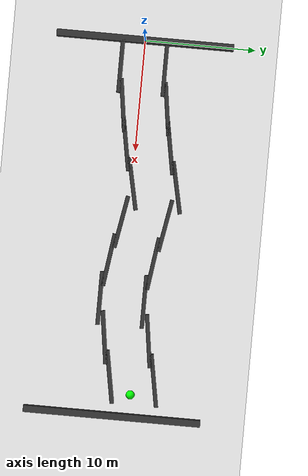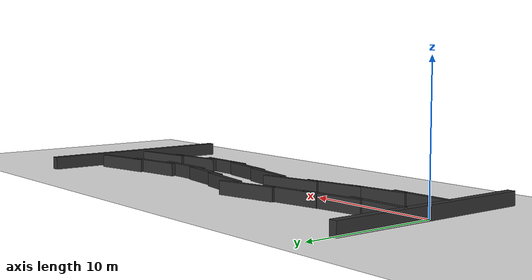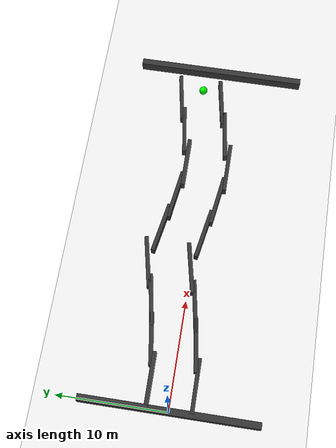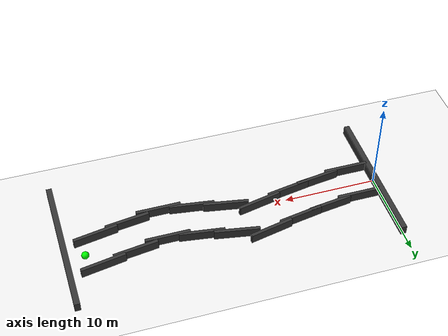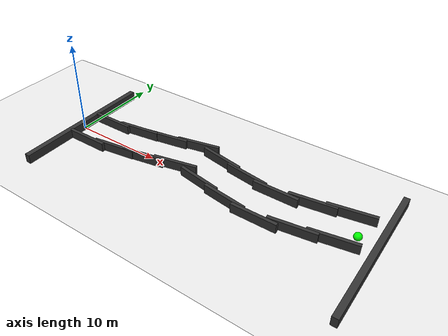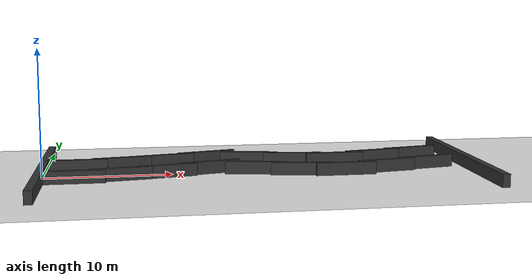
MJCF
<mujoco model="Smooth_ZigZag_Improved">

    <option timestep="0.01" gravity="0 0 -9.81"/>

    <visual>
        <headlight diffuse="0.8 0.8 0.8"
                   ambient="0.3 0.3 0.3"/>
        <global azimuth="120"
                elevation="-20"/>
    </visual>

    <worldbody>

        <!-- FLOOR -->

        <geom type="plane"
              pos="16 0 0"
              size="40 12 0.1"
              rgba="0.92 0.92 0.92 1"/>

        <!-- LEFT WALL -->

        <geom type="box"
              pos="2.5 2.0 0.5"
              size="2.4 0.18 0.5"
              rgba="0.2 0.2 0.2 1"/>

        <geom type="box"
              pos="6.0 2.5 0.5"
              size="2.4 0.18 0.5"
              euler="0 0 8"
              rgba="0.2 0.2 0.2 1"/>

        <geom type="box"
              pos="9.5 3.1 0.5"
              size="2.4 0.18 0.5"
              euler="0 0 10"
              rgba="0.2 0.2 0.2 1"/>

        <geom type="box"
              pos="13.0 4.0 0.5"
              size="2.4 0.18 0.5"
              euler="0 0 12"
              rgba="0.2 0.2 0.2 1"/>

        <geom type="box"
              pos="16.5 3.3 0.5"
              size="2.4 0.18 0.5"
              euler="0 0 -10"
              rgba="0.2 0.2 0.2 1"/>

        <geom type="box"
              pos="20.0 2.5 0.5"
              size="2.4 0.18 0.5"
              euler="0 0 -8"
              rgba="0.2 0.2 0.2 1"/>

        <geom type="box"
              pos="23.5 2.0 0.5"
              size="2.4 0.18 0.5"
              rgba="0.2 0.2 0.2 1"/>

        <geom type="box"
              pos="27.0 2.7 0.5"
              size="2.4 0.18 0.5"
              euler="0 0 8"
              rgba="0.2 0.2 0.2 1"/>

        <geom type="box"
              pos="30.5 3.5 0.5"
              size="2.4 0.18 0.5"
              euler="0 0 10"
              rgba="0.2 0.2 0.2 1"/>

        <!-- RIGHT WALL -->

        <geom type="box"
              pos="2.5 -2.0 0.5"
              size="2.4 0.18 0.5"
              rgba="0.2 0.2 0.2 1"/>

        <geom type="box"
              pos="6.0 -1.5 0.5"
              size="2.4 0.18 0.5"
              euler="0 0 8"
              rgba="0.2 0.2 0.2 1"/>

        <geom type="box"
              pos="9.5 -0.9 0.5"
              size="2.4 0.18 0.5"
              euler="0 0 10"
              rgba="0.2 0.2 0.2 1"/>

        <geom type="box"
              pos="13.0 0.0 0.5"
              size="2.4 0.18 0.5"
              euler="0 0 12"
              rgba="0.2 0.2 0.2 1"/>

        <geom type="box"
              pos="16.5 -0.7 0.5"
              size="2.4 0.18 0.5"
              euler="0 0 -10"
              rgba="0.2 0.2 0.2 1"/>

        <geom type="box"
              pos="20.0 -1.5 0.5"
              size="2.4 0.18 0.5"
              euler="0 0 -8"
              rgba="0.2 0.2 0.2 1"/>

        <geom type="box"
              pos="23.5 -2.0 0.5"
              size="2.4 0.18 0.5"
              rgba="0.2 0.2 0.2 1"/>

        <geom type="box"
              pos="27.0 -1.3 0.5"
              size="2.4 0.18 0.5"
              euler="0 0 8"
              rgba="0.2 0.2 0.2 1"/>

        <geom type="box"
              pos="30.5 -0.5 0.5"
              size="2.4 0.18 0.5"
              euler="0 0 10"
              rgba="0.2 0.2 0.2 1"/>

        <!-- START / END WALL -->

        <geom type="box"
              pos="0 0 0.5"
              size="0.3 8 0.5"
              rgba="0.2 0.2 0.2 1"/>

        <geom type="box"
              pos="34 0 0.5"
              size="0.3 8 0.5"
              rgba="0.2 0.2 0.2 1"/>

        <!-- GOAL -->

        <body name="goal"
              pos="32 1.5 0.2"
              mocap="true">

            <site type="sphere"
                  size="0.4"
                  rgba="0 1 0 1"/>
        </body>

    </worldbody>

</mujoco>
